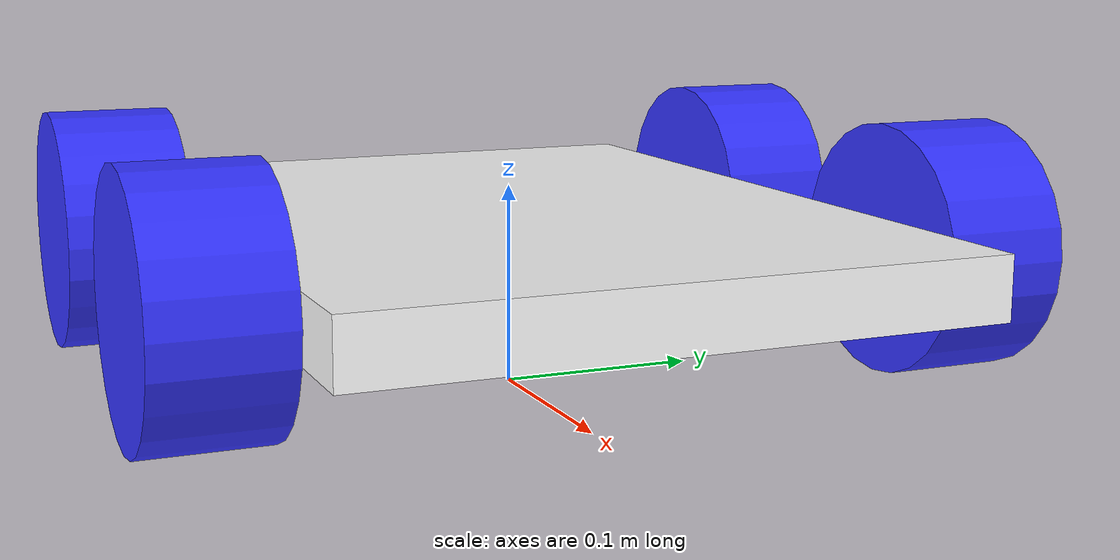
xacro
<?xml version="1.0"?>
<robot xmlns:xacro="http://www.ros.org/wiki/xacro" name="four_wheel_drive_robot">

  <!-- Include the parameters file -->
  <xacro:include filename="$(find track_master)/urdf/robot_parameters.xacro" />
  <xacro:include filename="$(find track_master)/urdf/inertial_macros.xacro"/>

  <!-- Couleurs -->
  <material name="white">
    <color rgba="1.0 1.0 1.0 1.0"/>
  </material>

  <material name="blue">
    <color rgba="0.2 0.2 1.0 1.0"/>
  </material>

  <!-- Root link (world or environment) -->
  <link name="base_footprint"/>

  <!-- Robot chassis -->
  <link name="base_link">
    <visual>
      <geometry>
        <box size="${chassis_length} ${chassis_width} ${chassis_height}"/>
      </geometry>
      <material name="white"/>
    </visual>
    <collision>
      <geometry>
        <box size="${chassis_length} ${chassis_width} ${chassis_height}"/>
      </geometry>
    </collision>
    <xacro:inertial_box mass="0.5" x="${chassis_length}" y="${chassis_width}" z="${chassis_height}">
            <origin xyz="${chassis_length/2} 0 ${chassis_height/2}" rpy="0 0 0"/>
    </xacro:inertial_box>
  </link>

  <!-- Gazebo plugin for base link -->
  <gazebo reference="base_link">
    <material>Gazebo/White</material>
  </gazebo>

  <!-- Joint to connect base_link to world_link (fixed joint) -->
  <joint name="base_joint" type="fixed">
    <parent link="base_footprint"/>
    <child link="base_link"/>
    <origin xyz="0 0 0.075" rpy="0 0 0"/>
  </joint>

  <!-- Rear left wheel -->
  <link name="rear_left_wheel">
    <visual>
      <geometry>
        <cylinder radius="${rear_wheel_radius}" length="${rear_wheel_length}"/>
      </geometry>
      <material name="blue"/>
    </visual>
    <collision>
      <geometry>
        <cylinder radius="${rear_wheel_radius}" length="${rear_wheel_length}"/>
      </geometry>
    </collision>
    <xacro:inertial_cylinder mass="0.3" length="${rear_wheel_length}" radius="${rear_wheel_radius}">
            <origin xyz="0 0 0" rpy="0 0 0"/>
    </xacro:inertial_cylinder>
  </link>

  <gazebo reference="rear_left_wheel">
    <material>Gazebo/Blue</material>
    <mu1>0.9</mu1>
    <mu2>0.9</mu2>
    <kp>1000000.0</kp>
    <kd>1.0</kd>
  </gazebo>

  <!-- Rear right wheel -->
  <link name="rear_right_wheel">
    <visual>
      <geometry>
        <cylinder radius="${rear_wheel_radius}" length="${rear_wheel_length}"/>
      </geometry>
      <material name="blue"/>
    </visual>
    <collision>
      <geometry>
        <cylinder radius="${rear_wheel_radius}" length="${rear_wheel_length}"/>
      </geometry>
    </collision>
    <xacro:inertial_cylinder mass="0.3" length="${rear_wheel_length}" radius="${rear_wheel_radius}">
            <origin xyz="0 0 0" rpy="0 0 0"/>
    </xacro:inertial_cylinder>
  </link>

  <gazebo reference="rear_right_wheel">
    <material>Gazebo/Blue</material>
    <mu1>0.9</mu1>
    <mu2>0.9</mu2>
    <kp>1000000.0</kp>
    <kd>1.0</kd>
  </gazebo>

  <!-- Front left wheel -->
  <link name="front_left_wheel">
    <visual>
      <geometry>
        <cylinder radius="${front_wheel_radius}" length="${front_wheel_length}"/>
      </geometry>
      <material name="blue"/>
    </visual>
    <collision>
      <geometry>
        <cylinder radius="${front_wheel_radius}" length="${front_wheel_length}"/>
      </geometry>
    </collision>
    <xacro:inertial_cylinder mass="0.3" length="${front_wheel_length}" radius="${front_wheel_radius}">
            <origin xyz="0 0 0" rpy="0 0 0"/>
    </xacro:inertial_cylinder>
  </link>

  <gazebo reference="front_left_wheel">
    <material>Gazebo/Blue</material>
    <mu1>0.9</mu1>
    <mu2>0.9</mu2>
    <kp>1000000.0</kp>
    <kd>1.0</kd>
  </gazebo>

  <!-- Front right wheel -->
  <link name="front_right_wheel">
    <visual>
      <geometry>
        <cylinder radius="${front_wheel_radius}" length="${front_wheel_length}"/>
      </geometry>
      <material name="blue"/>
    </visual>
    <collision>
      <geometry>
        <cylinder radius="${front_wheel_radius}" length="${front_wheel_length}"/>
      </geometry>
    </collision>
    <xacro:inertial_cylinder mass="0.3" length="${front_wheel_length}" radius="${front_wheel_radius}">
            <origin xyz="0 0 0" rpy="0 0 0"/>
    </xacro:inertial_cylinder>
  </link>

  <gazebo reference="front_right_wheel">
    <material>Gazebo/Blue</material>
    <mu1>0.9</mu1>
    <mu2>0.9</mu2>
    <kp>1000000.0</kp>
    <kd>1.0</kd>
  </gazebo>

  <!-- Joints for each wheel -->
  <joint name="rear_left_wheel_joint" type="continuous">
    <parent link="base_link"/>
    <child link="rear_left_wheel"/>
    <origin xyz="${rear_left_wheel_pos_x} ${rear_left_wheel_pos_y} 0" rpy="-${pi/2}  0 0"/>
    <axis xyz="0 0 1"/>
    <limit effort="10.0" velocity="9.0"/>
    <dynamics damping="0.01" friction="0.05"/>
  </joint>

  <joint name="rear_right_wheel_joint" type="continuous">
    <parent link="base_link"/>
    <child link="rear_right_wheel"/>
    <origin xyz="${rear_right_wheel_pos_x} ${rear_right_wheel_pos_y} 0" rpy="-${pi/2}   0 0"/>
    <axis xyz="0 0 1"/>
    <limit effort="10.0" velocity="9.0"/>
    <dynamics damping="0.01" friction="0.05"/>
  </joint>

  <joint name="front_left_wheel_joint" type="continuous">
    <parent link="base_link"/>
    <child link="front_left_wheel"/>
    <origin xyz="${front_left_wheel_pos_x} ${front_left_wheel_pos_y} 0" rpy="-${pi/2}   0 0"/>
    <axis xyz="0 0 1"/>
    <limit effort="10.0" velocity="9.0"/>
    <dynamics damping="0.01" friction="0.05"/>
  </joint>

  <joint name="front_right_wheel_joint" type="continuous">
    <parent link="base_link"/>
    <child link="front_right_wheel"/>
    <origin xyz="${front_right_wheel_pos_x} ${front_right_wheel_pos_y} 0" rpy="-${pi/2} 0 0"/>
    <axis xyz="0 0 1"/>
    <limit effort="10.0" velocity="9.0"/>
    <dynamics damping="0.01" friction="0.05"/>
  </joint>

</robot>

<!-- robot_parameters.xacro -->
<robot xmlns:xacro="http://www.ros.org/wiki/xacro">

  <!-- Parameters for the robot dimensions -->
  <xacro:property name="chassis_length" value="0.4"/>
  <xacro:property name="chassis_width" value="0.3"/>
  <xacro:property name="chassis_height" value="0.03"/>

  <!-- Parameters for rear wheel positions -->
  <xacro:property name="rear_wheel_radius" value="0.06"/>
  <xacro:property name="rear_wheel_length" value="0.06"/>
  <xacro:property name="rear_left_wheel_pos_x" value="-0.10"/>
  <xacro:property name="rear_right_wheel_pos_x" value="-0.10"/>
  <xacro:property name="rear_left_wheel_pos_y" value="0.18"/>
  <xacro:property name="rear_right_wheel_pos_y" value="-0.18"/>

  <!-- Parameters for front wheel positions -->
  <xacro:property name="front_wheel_radius" value="0.06"/>
  <xacro:property name="front_wheel_length" value="0.06"/>
  <xacro:property name="front_left_wheel_pos_x" value="0.10"/>
  <xacro:property name="front_right_wheel_pos_x" value="0.10"/>
  <xacro:property name="front_left_wheel_pos_y" value="0.18"/>
  <xacro:property name="front_right_wheel_pos_y" value="-0.18"/>

  <!-- Parameters for sensor positions -->
  <xacro:property name="gps_pos_x" value="0.05"/>
  <xacro:property name="gps_pos_y" value="0.0"/>
  <xacro:property name="gps_pos_z" value="0.0"/>

  <xacro:property name="imu_pos_x" value="0.0"/>
  <xacro:property name="imu_pos_y" value="0.0"/>
  <xacro:property name="imu_pos_z" value="0.0"/>

</robot>
